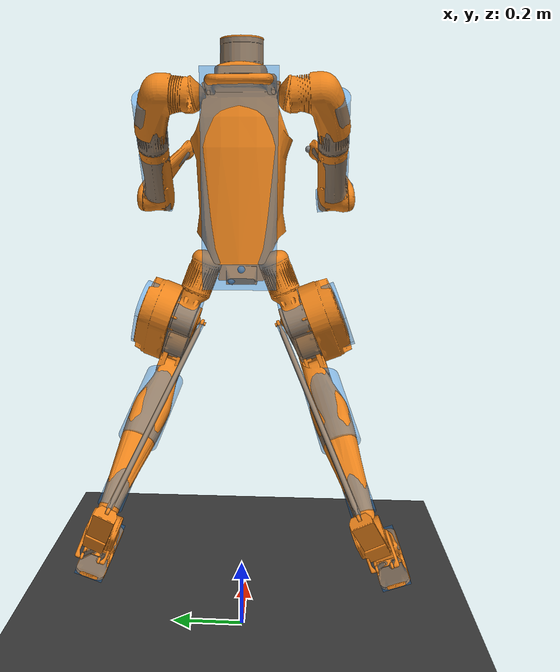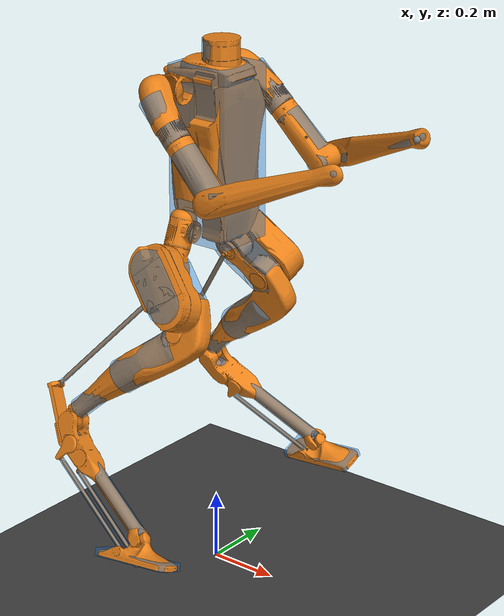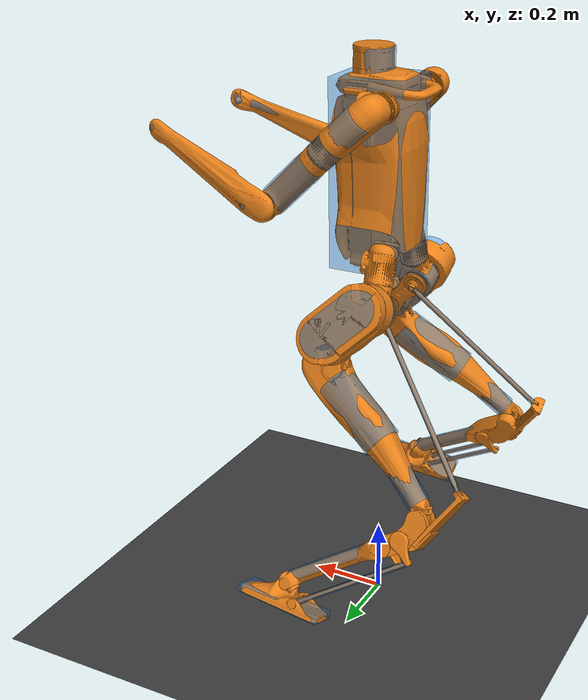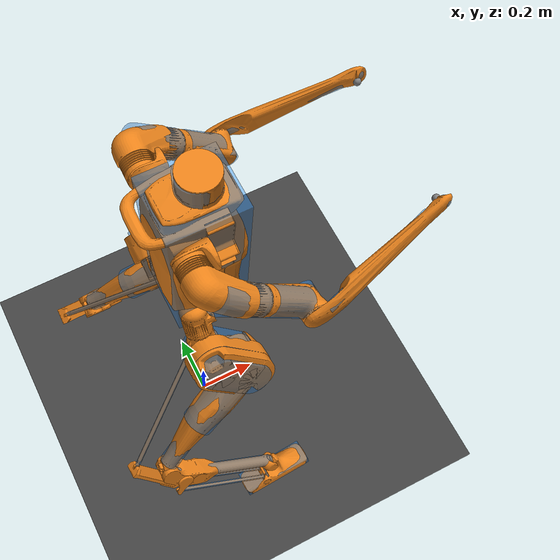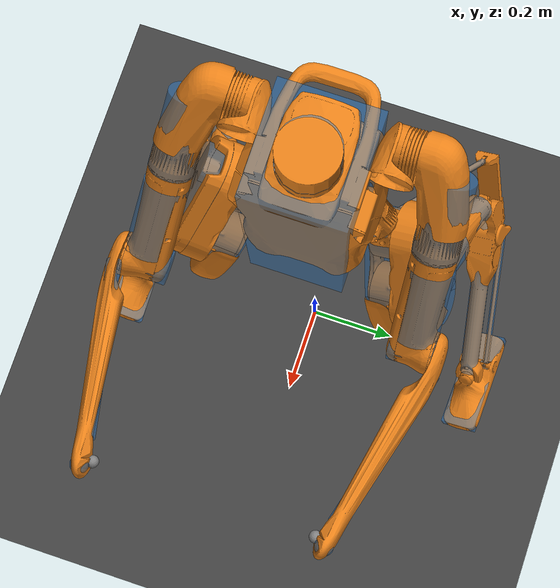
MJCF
<mujoco model='digit-v3'>
  <compiler angle='degree' eulerseq='xyz'/>
  <option gravity='0 0 -9.806' iterations='50' solver='Newton' timestep='0.000500'/>
  <asset>
    <material name='collision' rgba='0.1 0.5 0.9 0.4'/>
    <material name='plane' reflectance='0.000000' texrepeat='1 1' texture='plane' texuniform='true'/>
    <material name='robot' rgba='0.9 0.5 0.1 1'/>
    <texture builtin='checker' height='512' name='plane' rgb1='0.2 0.2 0.2' rgb2='0.3 0.3 0.3' type='2d' width='512'/>
    <texture builtin='gradient' height='128' rgb1='0.4 0.6 0.8' rgb2='0 0 0' type='skybox' width='128'/>
    <mesh name='base' file='torso.obj'/>
    <mesh name='left-hip-roll' file='hip-yaw-housing.obj'/>
    <mesh name='left-hip-yaw' file='hip-pitch-housing.obj'/>
    <mesh name='left-hip-pitch' file='hip-pitch.obj'/>
    <mesh name='left-knee' file='knee.obj'/>
    <mesh name='left-shin' file='shin.obj'/>
    <mesh name='left-tarsus' file='tarsus.obj'/>
    <mesh name='left-toe-A' file='toe-output.obj'/>
    <mesh name='left-toe-A-rod' file='toe-A-rod.obj'/>
    <mesh name='left-toe-B' file='toe-output.obj'/>
    <mesh name='left-toe-B-rod' file='toe-B-rod.obj'/>
    <mesh name='left-toe-pitch' file='toe-pitch.obj'/>
    <mesh name='left-toe-roll' file='toe-roll.obj'/>
    <mesh name='left-heel-spring' file='heel-spring.obj'/>
    <mesh name='left-achillies-rod' file='achilles-rod.obj'/>
    <mesh name='right-hip-roll' scale='1 -1 1' file='hip-yaw-housing.obj'/>
    <mesh name='right-hip-yaw' scale='1 -1 1' file='hip-pitch-housing.obj'/>
    <mesh name='right-hip-pitch' scale='1 -1 1' file='hip-pitch.obj'/>
    <mesh name='right-knee' scale='1 -1 1' file='knee.obj'/>
    <mesh name='right-shin' scale='1 -1 1' file='shin.obj'/>
    <mesh name='right-tarsus' scale='1 -1 1' file='tarsus.obj'/>
    <mesh name='right-toe-A' scale='1 -1 1' file='toe-output.obj'/>
    <mesh name='right-toe-A-rod' scale='1 -1 1' file='toe-A-rod.obj'/>
    <mesh name='right-toe-B' scale='1 -1 1' file='toe-output.obj'/>
    <mesh name='right-toe-B-rod' scale='1 -1 1' file='toe-B-rod.obj'/>
    <mesh name='right-toe-pitch' scale='1 -1 1' file='toe-pitch.obj'/>
    <mesh name='right-toe-roll' scale='1 -1 1' file='toe-roll.obj'/>
    <mesh name='right-heel-spring' scale='1 -1 1' file='heel-spring.obj'/>
    <mesh name='right-achillies-rod' scale='1 -1 1' file='achilles-rod.obj'/>
    <mesh name='left-shoulder-roll' file='arm-L1.obj'/>
    <mesh name='left-shoulder-pitch' file='arm-L2.obj'/>
    <mesh name='left-shoulder-yaw' file='arm-L3.obj'/>
    <mesh name='left-elbow' file='arm-L4.obj'/>
    <mesh name='right-shoulder-roll' scale='1 -1 1' file='arm-L1.obj'/>
    <mesh name='right-shoulder-pitch' scale='1 -1 1' file='arm-L2.obj'/>
    <mesh name='right-shoulder-yaw' scale='1 -1 1' file='arm-L3.obj'/>
    <mesh name='right-elbow' scale='1 -1 1' file='arm-L4.obj'/>
  </asset>
  <default>
    <default class='collision'>
      <geom conaffinity='1' condim='3' contype='1' material='collision'/>
    </default>
    <default class='robot'>
      <geom material='robot'/>
    </default>
    <equality solref='0.005 1'/>
    <geom conaffinity='0' condim='1' contype='0' solref='0.005 1'/>
    <motor ctrllimited='true'/>
  </default>
  <worldbody>
    <geom name='floor' type='plane' conaffinity='15' condim='3' material='plane' pos='0 0 0' size='5 5 0.125'/>
    <body name='base' pos='0 0 1.03' euler='0 0 0'>
      <inertial pos='0.001637 0.0002 0.259547' mass='15.028392' fullinertia='0.376284 0.342655 0.100648 -8.8e-05 0.008378 6.7e-05'/>
      <joint type='free' limited='false'/>
      <geom type='mesh' mesh='base' material='robot'/>
      <geom type='box' size='0.0975 0.087 0.245' pos='0.008 0 0.21' euler='0 0 0' class='collision'/>
      <geom type='cylinder' size ='0.05 0.0325' pos='0.02 0 0.49' euler='0 0 0' class='collision'/>
      <site name='context' pos='0.06425 0 0.38' euler='180 0 0' size='0.01'/>
      <site name='imu' pos='0 0 0' euler='0 -90 0' size='0.01'/>
      <body name='left-hip-roll' pos='-0.001 0.091 0' euler='0 -90 -21.5'>
        <inertial pos='-0.001967 0.000244 0.031435' mass='0.915088' fullinertia='0.001017 0.001148 0.000766 -3e-06 1.3e-05 -4e-06'/>
        <joint name='left-hip-roll' type='hinge' axis='0 0 1' range='-60 60' limited='true' damping='1.000000' frictionloss='1.000000' armature='0.1728'/>
        <geom type='mesh' mesh='left-hip-roll' material='robot'/>
        <body name='left-hip-yaw' pos='-0.0505 0 0.044' euler='0 -90 0'>
          <inertial pos='1e-05 -0.001945 0.042033' mass='0.818753' fullinertia='0.001627 0.001929 0.00077 -1e-06 2e-06 5.3e-05'/>
          <joint name='left-hip-yaw' type='hinge' axis='0 0 1' range='-40 40' limited='true' damping='1.000000' frictionloss='1.000000' armature='0.0675'/>
          <geom type='mesh' mesh='left-hip-yaw' material='robot'/>
          <body name='left-hip-pitch' pos='0 0.004 0.068' euler='90 0 135'>
            <inertial pos='0.060537 0.000521 -0.038857' mass='6.244279' fullinertia='0.011533 0.033345 0.033958 -0.000171 0.000148 0.000178'/>
            <joint name='left-hip-pitch' type='hinge' axis='0 0 -1' range='-60 90' limited='true' damping='1.000000' frictionloss='0.500000' armature='0.120576'/>
            <geom type='mesh' mesh='left-hip-pitch' material='robot'/>
            <geom type='cylinder' size ='0.05 0.072' pos='0 0 -0.04' euler='0 0 0' class='collision'/>
            <geom type='cylinder' size ='0.05 0.072' pos='0.12 0 -0.04' euler='0 0 0' class='collision'/>
            <geom type='box' size='0.06 0.05 0.072' pos='0.06 0 -0.04' euler='0 0 0' class='collision'/>
            <body name='left-achillies-rod' pos='0 0 0.046' euler='4.09 0.05 -82.27'>
              <inertial pos='0.2506 0 0' mass='0.178148' fullinertia='3e-06 0.004501 0.004501 0 0 0'/>
              <joint name='left-achillies-rod' type='ball' limited='false' damping='0.010000'/>
              <geom type='mesh' mesh='left-achillies-rod' material='robot'/>
              <geom type='capsule' size ='0.007 0.25' pos='0.25 0 0' euler='4 90 0' class='collision'/>
            </body>
            <body name='left-knee' pos='0.12 0 0.0045' euler='0 0 -90'>
              <inertial pos='0.045641 0.042154 0.001657' mass='1.227077' fullinertia='0.002643 0.005098 0.007019 -0.001832 6.6e-05 4.5e-05'/>
              <joint name='left-knee' type='hinge' axis='0 0 1' range='-71 50' limited='true' damping='1.000000' frictionloss='0.500000' armature='0.120576'/>
              <geom type='mesh' mesh='left-knee' material='robot'/>
              <body name='left-shin' pos='0.060677 0.047406 0' euler='0 0 0'>
                <inertial pos='0.174265 0.010265 0.00107' mass='0.895793' fullinertia='0.001128 0.022492 0.022793 0.001098 0.000196 -3e-06'/>
                <joint name='left-shin' type='hinge' axis='0 0 1' limited='false' stiffness='6000'/>
                <geom type='mesh' mesh='left-shin' material='robot'/>
                <geom type='cylinder' size ='0.03 0.1715' pos='0.23 0 0' euler='0 90 0' class='collision'/>
                <geom type='cylinder' size ='0.05 0.1' pos='0.125 0.009 0' euler='90 84 0' class='collision'/>
                <body name='left-tarsus' pos='0.434759 0.02 0' euler='0 0 103'>
                  <inertial pos='0.100777 -0.029183 0.000678' mass='1.322865' fullinertia='0.000932 0.016409 0.016501 0.00061 0.000102 9e-06'/>
                  <joint name='left-tarsus' type='hinge' axis='0 0 1' range='-50.3 71.6' limited='true'/>
                  <geom type='mesh' mesh='left-tarsus' material='robot'/>
                  <geom type='capsule' size ='0.02 0.18' pos='0.21 -0.03 0' euler='0 90 0' class='collision'/>
                  <body name='left-heel-spring' pos='-0.01766 -0.029456 0.00104' euler='4.47 0.32 155.8'>
                    <inertial pos='0.049086 0.004739 -4.5e-05' mass='0.230018' fullinertia='5.5e-05 0.00074 0.000701 1.5e-05 1e-06 -0'/>
                    <joint name='left-heel-spring' type='hinge' axis='0 0 1' range='-6 6' limited='true' stiffness='4375'/>
                    <geom type='mesh' mesh='left-heel-spring' material='robot'/>
                  </body>
                  <body name='left-toe-A' pos='0.059 -0.034 -0.0276' euler='-180 0 91.96'>
                    <inertial pos='0.005161 1e-06 -0.002248' mass='0.139557' fullinertia='2.9e-05 5.8e-05 7.4e-05 0 -4e-06 -0'/>
                    <joint name='left-toe-A' type='hinge' axis='0 0 1' range='-55.4 51.3' limited='true' damping='1.000000' frictionloss='1.000000' armature='0.035'/>
                    <geom type='mesh' mesh='left-toe-A' material='robot'/>
                    <body name='left-toe-A-rod' pos='0.057 0 -0.008' euler='0.34 2.14 -91.47'>
                      <inertial pos='0.171071 0 0' mass='0.090983' fullinertia='1e-06 0.001182 0.001182 -0 -0 0'/>
                      <joint name='left-toe-A-rod' type='ball' limited='false' damping='0.010000'/>
                      <geom type='mesh' mesh='left-toe-A-rod' material='robot'/>
                      <geom type='capsule' size ='0.007 0.17' pos='0.17 0 0' euler='4 90 0' class='collision'/>
                    </body>
                  </body>
                  <body name='left-toe-B' pos='0.111 -0.034 0.0276' euler='0 0 -91.96'>
                    <inertial pos='0.005161 1e-06 -0.002248' mass='0.139557' fullinertia='2.9e-05 5.8e-05 7.4e-05 0 -4e-06 -0'/>
                    <joint name='left-toe-B' type='hinge' axis='0 0 1' range='-52.3 72.45' limited='true' damping='1.000000' frictionloss='1.000000' armature='0.035'/>
                    <geom type='mesh' mesh='left-toe-B' material='robot'/>
                    <body name='left-toe-B-rod' pos='0.057 0 -0.008' euler='-0.22 -3.08 91.38'>
                      <inertial pos='0.142991 0 0' mass='0.079507' fullinertia='1e-06 0.000768 0.000768 -0 -0 0'/>
                      <joint name='left-toe-B-rod' type='ball' limited='false' damping='0.010000'/>
                      <geom type='mesh' mesh='left-toe-B-rod' material='robot'/>
                      <geom type='capsule' size ='0.007 0.144' pos='0.144 0 0' euler='4 90 0' class='collision'/>
                    </body>
                  </body>
                  <body name='left-toe-pitch' pos='0.408 -0.04 0' euler='0 0 68.5'>
                    <inertial pos='-0.000141 2e-06 3e-06' mass='0.043881' fullinertia='5e-06 8e-06 4e-06 -0 0 0'/>
                    <joint name='left-toe-pitch' type='hinge' axis='0 0 1' range='-45 45' limited='true'/>
                    <geom type='mesh' mesh='left-toe-pitch' material='robot'/>
                    <body name='left-toe-roll' pos='0 0 0' euler='0 90 0'>
                      <inertial pos='9e-06 -0.028084 -0.023204' mass='0.531283' fullinertia='0.00187 0.001616 0.000843 -0 0 0.000566'/>
                      <joint name='left-toe-roll' type='hinge' axis='0 0 1' range='-35 35' limited='true'/>
                      <geom type='mesh' mesh='left-toe-roll' material='robot'/>
                      <geom type='box' size='0.04 0.1175 0.0115' pos='0 -0.0437 -0.0255' euler='-60 0 0' class='collision'/>
                      <site name='left-foot' pos='0 -0.05456 -0.0315' euler='-60 0 -90' size='0.01'/>
                    </body>
                  </body>
                </body>
              </body>
            </body>
          </body>
        </body>
      </body>
      <body name='left-shoulder-roll' pos='-0.001 0.12 0.4' euler='-10 -90 0'>
        <inertial pos='-0.000819 -0.003158 0.023405' mass='0.535396' fullinertia='0.000704 0.00075 0.000298 1.4e-05 1.2e-05 3.5e-05'/>
        <joint name='left-shoulder-roll' type='hinge' axis='0 0 1' range='-75 75' limited='true' damping='2.000000' frictionloss='2.000000' armature='0.1728'/>
        <geom type='mesh' mesh='left-shoulder-roll' material='robot'/>
        <body name='left-shoulder-pitch' pos='-0.00317 -0.011055 0.0555' euler='90 -16 -45'>
          <inertial pos='-4.2e-05 -0.061882 -0.073788' mass='1.440357' fullinertia='0.006761 0.002087 0.005778 -6e-06 -3e-06 -0.002046'/>
          <joint name='left-shoulder-pitch' type='hinge' axis='0 0 -1' range='-145 145' limited='true' damping='2.000000' frictionloss='2.000000' armature='0.1728'/>
          <geom type='mesh' mesh='left-shoulder-pitch' material='robot'/>
          <geom type='cylinder' size ='0.038 0.07' pos='0 -0.093 -0.1' euler='90 0 0' class='collision'/>
          <body name='left-shoulder-yaw' pos='0 -0.165 -0.1' euler='90 0 0'>
            <inertial pos='-3e-05 0.001937 0.11407' mass='1.065387' fullinertia='0.006967 0.007003 0.000673 -1e-06 -1e-06 -1.5e-05'/>
            <joint name='left-shoulder-yaw' type='hinge' axis='0 0 1' range='-100 100' limited='true' damping='1.000000' frictionloss='2.000000' armature='0.0675'/>
            <geom type='mesh' mesh='left-shoulder-yaw' material='robot'/>
            <geom type='cylinder' size ='0.038 0.0675' pos='0 0 0.092558' euler='0 0 0' class='collision'/>
            <geom type='cylinder' size ='0.03 0.04' pos='0 -0.0035 0.185' euler='90 0 22.5' class='collision'/>
            <body name='left-elbow' pos='0 -0.0385 0.185' euler='90 0 22.5'>
              <inertial pos='0.107996 0.000521 -0.017765' mass='0.550582' fullinertia='0.000476 0.009564 0.009437 -2.9e-05 0.001403 9e-06'/>
              <joint name='left-elbow' type='hinge' axis='0 0 1' range='-77.5 77.5' limited='true' damping='1.000000' frictionloss='2.000000' armature='0.1728'/>
              <geom type='mesh' mesh='left-elbow' material='robot'/>
              <geom type='cylinder' size ='0.013 0.1565' pos='0.184 0.01 -0.026' euler='-190 78 -180' class='collision'/>
              <geom type='sphere' size='0.015' pos='0.37937 0 -0.061912' euler='0 0 0' class='collision'/>
              <site name='left-hand' pos='0.369 0 -0.07912' euler='90 0 -10' size='0.01'/>
            </body>
          </body>
        </body>
      </body>
      <site name='lidar' pos='0.025 0 0.4925' euler='0 0 15' size='0.01'/>
      <site name='realsense-back' pos='-0.000607 0.025 -0.025283' euler='-180 45 180' size='0.01'/>
      <site name='realsense-down' pos='0.0305 0.025 -0.03268' euler='0 90 0' size='0.01'/>
      <site name='realsense-forward' pos='0.093981 0.0225 0.426449' euler='0 45 0' size='0.01'/>
      <site name='realsense-front' pos='0.061607 0.025 -0.025283' euler='0 45 0' size='0.01'/>
      <body name='right-hip-roll' pos='-0.001 -0.091 0' euler='0 -90 21.5'>
        <inertial pos='-0.001967 -0.000244 0.031435' mass='0.915088' fullinertia='0.001017 0.001148 0.000766 3e-06 1.3e-05 4e-06'/>
        <joint name='right-hip-roll' type='hinge' axis='0 0 1' range='-60 60' limited='true' damping='1.000000' frictionloss='1.000000' armature='0.1728'/>
        <geom type='mesh' mesh='right-hip-roll' material='robot'/>
        <body name='right-hip-yaw' pos='-0.0505 0 0.044' euler='0 -90 0'>
          <inertial pos='1e-05 0.001945 0.042033' mass='0.818753' fullinertia='0.001627 0.001929 0.00077 1e-06 2e-06 -5.3e-05'/>
          <joint name='right-hip-yaw' type='hinge' axis='0 0 1' range='-40 40' limited='true' damping='1.000000' frictionloss='1.000000' armature='0.0675'/>
          <geom type='mesh' mesh='right-hip-yaw' material='robot'/>
          <body name='right-hip-pitch' pos='0 -0.004 0.068' euler='-90 0 -135'>
            <inertial pos='0.060537 -0.000521 -0.038857' mass='6.244279' fullinertia='0.011533 0.033345 0.033958 0.000171 0.000148 -0.000178'/>
            <joint name='right-hip-pitch' type='hinge' axis='0 0 -1' range='-90 60' limited='true' damping='1.000000' frictionloss='0.500000' armature='0.120576'/>
            <geom type='mesh' mesh='right-hip-pitch' material='robot'/>
            <geom type='cylinder' size ='0.05 0.072' pos='0 0 -0.04' euler='0 0 0' class='collision'/>
            <geom type='cylinder' size ='0.05 0.072' pos='0.12 0 -0.04' euler='0 0 0' class='collision'/>
            <geom type='box' size='0.06 0.05 0.072' pos='0.06 0 -0.04' euler='0 0 0' class='collision'/>
            <body name='right-achillies-rod' pos='0 0 0.046' euler='-4.09 0.05 82.27'>
              <inertial pos='0.2506 0 0' mass='0.178148' fullinertia='3e-06 0.004501 0.004501 0 0 0'/>
              <joint name='right-achillies-rod' type='ball' limited='false' damping='0.010000'/>
              <geom type='mesh' mesh='right-achillies-rod' material='robot'/>
              <geom type='capsule' size ='0.007 0.25' pos='0.25 0 0' euler='4 90 0' class='collision'/>
            </body>
            <body name='right-knee' pos='0.12 0 0.0045' euler='0 0 90'>
              <inertial pos='0.045641 -0.042154 0.001657' mass='1.227077' fullinertia='0.002643 0.005098 0.007019 0.001832 6.6e-05 -4.5e-05'/>
              <joint name='right-knee' type='hinge' axis='0 0 1' range='-50 71' limited='true' damping='1.000000' frictionloss='0.500000' armature='0.120576'/>
              <geom type='mesh' mesh='right-knee' material='robot'/>
              <body name='right-shin' pos='0.060677 -0.047406 0' euler='0 0 0'>
                <inertial pos='0.174265 -0.010265 0.00107' mass='0.895793' fullinertia='0.001128 0.022492 0.022793 -0.001098 0.000196 3e-06'/>
                <joint name='right-shin' type='hinge' axis='0 0 1' limited='false' stiffness='6000'/>
                <geom type='mesh' mesh='right-shin' material='robot'/>
                <geom type='cylinder' size ='0.03 0.1715' pos='0.23 0 0' euler='0 90 0' class='collision'/>
                <geom type='cylinder' size ='0.05 0.1' pos='0.125 -0.009 0' euler='-90 84 0' class='collision'/>
                <body name='right-tarsus' pos='0.434759 -0.02 0' euler='0 0 -103'>
                  <inertial pos='0.100777 0.029183 0.000678' mass='1.322865' fullinertia='0.000932 0.016409 0.016501 -0.00061 0.000102 -9e-06'/>
                  <joint name='right-tarsus' type='hinge' axis='0 0 1' range='-71.6 50.3' limited='true'/>
                  <geom type='mesh' mesh='right-tarsus' material='robot'/>
                  <geom type='capsule' size ='0.02 0.18' pos='0.21 0.03 0' euler='0 90 0' class='collision'/>
                  <body name='right-heel-spring' pos='-0.01766 0.029456 0.00104' euler='-4.47 0.32 -155.8'>
                    <inertial pos='0.049086 -0.004739 -4.5e-05' mass='0.230018' fullinertia='5.5e-05 0.00074 0.000701 -1.5e-05 1e-06 0'/>
                    <joint name='right-heel-spring' type='hinge' axis='0 0 1' range='-6 6' limited='true' stiffness='4375'/>
                    <geom type='mesh' mesh='right-heel-spring' material='robot'/>
                  </body>
                  <body name='right-toe-A' pos='0.059 0.034 -0.0276' euler='180 0 -91.96'>
                    <inertial pos='0.005161 -1e-06 -0.002248' mass='0.139557' fullinertia='2.9e-05 5.8e-05 7.4e-05 -0 -4e-06 0'/>
                    <joint name='right-toe-A' type='hinge' axis='0 0 1' range='-55.4 51.3' limited='true' damping='1.000000' frictionloss='1.000000' armature='0.035'/>
                    <geom type='mesh' mesh='right-toe-A' material='robot'/>
                    <body name='right-toe-A-rod' pos='0.057 0 -0.008' euler='-0.34 2.14 91.47'>
                      <inertial pos='0.171071 0 0' mass='0.090983' fullinertia='1e-06 0.001182 0.001182 0 -0 0'/>
                      <joint name='right-toe-A-rod' type='ball' limited='false' damping='0.010000'/>
                      <geom type='mesh' mesh='right-toe-A-rod' material='robot'/>
                      <geom type='capsule' size ='0.007 0.17' pos='0.17 0 0' euler='4 90 0' contype='2' conaffinity='1' class='collision'/>
                    </body>
                  </body>
                  <body name='right-toe-B' pos='0.111 0.034 0.0276' euler='0 0 91.96'>
                    <inertial pos='0.005161 -1e-06 -0.002248' mass='0.139557' fullinertia='2.9e-05 5.8e-05 7.4e-05 -0 -4e-06 0'/>
                    <joint name='right-toe-B' type='hinge' axis='0 0 1' range='-52.3 72.45' limited='true' damping='1.000000' frictionloss='1.000000' armature='0.035'/>
                    <geom type='mesh' mesh='right-toe-B' material='robot'/>
                    <body name='right-toe-B-rod' pos='0.057 0 -0.008' euler='0.22 -3.08 -91.38'>
                      <inertial pos='0.142991 0 0' mass='0.079507' fullinertia='1e-06 0.000768 0.000768 0 -0 0'/>
                      <joint name='right-toe-B-rod' type='ball' limited='false' damping='0.010000'/>
                      <geom type='mesh' mesh='right-toe-B-rod' material='robot'/>
                      <geom type='capsule' size ='0.007 0.144' pos='0.144 0 0' euler='4 90 0' contype='2' conaffinity='1' class='collision'/>
                    </body>
                  </body>
                  <body name='right-toe-pitch' pos='0.408 0.04 0' euler='0 0 -68.5'>
                    <inertial pos='-0.000141 -2e-06 3e-06' mass='0.043881' fullinertia='5e-06 8e-06 4e-06 0 0 -0'/>
                    <joint name='right-toe-pitch' type='hinge' axis='0 0 1' range='-45 45' limited='true'/>
                    <geom type='mesh' mesh='right-toe-pitch' material='robot'/>
                    <body name='right-toe-roll' pos='0 0 0' euler='0 90 0'>
                      <inertial pos='9e-06 0.028084 -0.023204' mass='0.531283' fullinertia='0.00187 0.001616 0.000843 0 0 -0.000566'/>
                      <joint name='right-toe-roll' type='hinge' axis='0 0 1' range='-35 35' limited='true'/>
                      <geom type='mesh' mesh='right-toe-roll' material='robot'/>
                      <geom type='box' size='0.04 0.1175 0.0115' pos='0 0.0437 -0.0255' euler='60 0 0' class='collision'/>
                      <site name='right-foot' pos='0 0.05456 -0.0315' euler='60 0 90' size='0.01'/>
                    </body>
                  </body>
                </body>
              </body>
            </body>
          </body>
        </body>
      </body>
      <body name='right-shoulder-roll' pos='-0.001 -0.12 0.4' euler='10 -90 0'>
        <inertial pos='-0.000819 0.003158 0.023405' mass='0.535396' fullinertia='0.000704 0.00075 0.000298 -1.4e-05 1.2e-05 -3.5e-05'/>
        <joint name='right-shoulder-roll' type='hinge' axis='0 0 1' range='-75 75' limited='true' damping='2.000000' frictionloss='2.000000' armature='0.1728'/>
        <geom type='mesh' mesh='right-shoulder-roll' material='robot'/>
        <body name='right-shoulder-pitch' pos='-0.00317 0.011055 0.0555' euler='-90 -16 45'>
          <inertial pos='-4.2e-05 0.061882 -0.073788' mass='1.440357' fullinertia='0.006761 0.002087 0.005778 6e-06 -3e-06 0.002046'/>
          <joint name='right-shoulder-pitch' type='hinge' axis='0 0 -1' range='-145 145' limited='true' damping='2.000000' frictionloss='2.000000' armature='0.1728'/>
          <geom type='mesh' mesh='right-shoulder-pitch' material='robot'/>
          <geom type='cylinder' size ='0.038 0.07' pos='0 0.093 -0.1' euler='-90 0 0' class='collision'/>
          <body name='right-shoulder-yaw' pos='0 0.165 -0.1' euler='-90 0 0'>
            <inertial pos='-3e-05 -0.001937 0.11407' mass='1.065387' fullinertia='0.006967 0.007003 0.000673 1e-06 -1e-06 1.5e-05'/>
            <joint name='right-shoulder-yaw' type='hinge' axis='0 0 1' range='-100 100' limited='true' damping='1.000000' frictionloss='2.000000' armature='0.0675'/>
            <geom type='mesh' mesh='right-shoulder-yaw' material='robot'/>
            <geom type='cylinder' size ='0.038 0.0675' pos='0 0 0.092558' euler='0 0 0' class='collision'/>
            <geom type='cylinder' size ='0.03 0.04' pos='0 -0.0035 0.185' euler='90 0 22.5' class='collision'/>
            <body name='right-elbow' pos='0 0.0385 0.185' euler='-90 0 -22.5'>
              <inertial pos='0.107996 -0.000521 -0.017765' mass='0.550582' fullinertia='0.000476 0.009564 0.009437 2.9e-05 0.001403 -9e-06'/>
              <joint name='right-elbow' type='hinge' axis='0 0 1' range='-77.5 77.5' limited='true' damping='1.000000' frictionloss='2.000000' armature='0.1728'/>
              <geom type='mesh' mesh='right-elbow' material='robot'/>
              <geom type='cylinder' size ='0.013 0.1565' pos='0.184 0.01 -0.026' euler='-190 78 -180' class='collision'/>
              <geom type='sphere' size='0.015' pos='0.37937 0 -0.061912' euler='0 0 0' class='collision'/>
              <site name='right-hand' pos='0.369 0 -0.07912' euler='-90 0 10' size='0.01'/>
            </body>
          </body>
        </body>
      </body>
    </body>
  </worldbody>
  <equality>
    <connect name='left-toe-A-rod' body1='left-toe-roll' body2='left-toe-A-rod' anchor='0.0179 -0.009551 -0.054164'/>
    <connect name='left-toe-B-rod' body1='left-toe-roll' body2='left-toe-B-rod' anchor='-0.0181 -0.009551 -0.054164'/>
    <connect name='left-achillies-rod' body1='left-heel-spring' body2='left-achillies-rod' anchor='0.113789 -0.011056 0'/>
    <connect name='right-toe-A-rod' body1='right-toe-roll' body2='right-toe-A-rod' anchor='0.0179 0.009551 -0.054164'/>
    <connect name='right-toe-B-rod' body1='right-toe-roll' body2='right-toe-B-rod' anchor='-0.0181 0.009551 -0.054164'/>
    <connect name='right-achillies-rod' body1='right-heel-spring' body2='right-achillies-rod' anchor='0.113789 0.011056 0'/>
  </equality>
  <actuator>
    <motor name='left-hip-roll' joint='left-hip-roll' gear='80' ctrllimited='true' ctrlrange='-1.4 1.4'/>
    <motor name='left-hip-yaw' joint='left-hip-yaw' gear='50' ctrllimited='true' ctrlrange='-1.4 1.4'/>
    <motor name='left-hip-pitch' joint='left-hip-pitch' gear='16' ctrllimited='true' ctrlrange='-12.5 12.5'/>
    <motor name='left-knee' joint='left-knee' gear='16' ctrllimited='true' ctrlrange='-12.5 12.5'/>
    <motor name='left-toe-A' joint='left-toe-A' gear='50' ctrllimited='true' ctrlrange='-0.9 0.9'/>
    <motor name='left-toe-B' joint='left-toe-B' gear='50' ctrllimited='true' ctrlrange='-0.9 0.9'/>
    <motor name='right-hip-roll' joint='right-hip-roll' gear='80' ctrllimited='true' ctrlrange='-1.4 1.4'/>
    <motor name='right-hip-yaw' joint='right-hip-yaw' gear='50' ctrllimited='true' ctrlrange='-1.4 1.4'/>
    <motor name='right-hip-pitch' joint='right-hip-pitch' gear='16' ctrllimited='true' ctrlrange='-12.5 12.5'/>
    <motor name='right-knee' joint='right-knee' gear='16' ctrllimited='true' ctrlrange='-12.5 12.5'/>
    <motor name='right-toe-A' joint='right-toe-A' gear='50' ctrllimited='true' ctrlrange='-0.9 0.9'/>
    <motor name='right-toe-B' joint='right-toe-B' gear='50' ctrllimited='true' ctrlrange='-0.9 0.9'/>
    <motor name='left-shoulder-roll' joint='left-shoulder-roll' gear='80' ctrllimited='true' ctrlrange='-1.4 1.4'/>
    <motor name='left-shoulder-pitch' joint='left-shoulder-pitch' gear='80' ctrllimited='true' ctrlrange='-1.4 1.4'/>
    <motor name='left-shoulder-yaw' joint='left-shoulder-yaw' gear='50' ctrllimited='true' ctrlrange='-1.4 1.4'/>
    <motor name='left-elbow' joint='left-elbow' gear='80' ctrllimited='true' ctrlrange='-1.4 1.4'/>
    <motor name='right-shoulder-roll' joint='right-shoulder-roll' gear='80' ctrllimited='true' ctrlrange='-1.4 1.4'/>
    <motor name='right-shoulder-pitch' joint='right-shoulder-pitch' gear='80' ctrllimited='true' ctrlrange='-1.4 1.4'/>
    <motor name='right-shoulder-yaw' joint='right-shoulder-yaw' gear='50' ctrllimited='true' ctrlrange='-1.4 1.4'/>
    <motor name='right-elbow' joint='right-elbow' gear='80' ctrllimited='true' ctrlrange='-1.4 1.4'/>
  </actuator>
  <sensor>
    <framepos  name='base-pos' objtype='body' objname='base' />
    <framequat name='base-quat' objtype='body' objname='base' />
    <jointpos name='left-hip-roll' joint='left-hip-roll'/>
    <jointpos name='left-hip-yaw' joint='left-hip-yaw'/>
    <jointpos name='left-hip-pitch' joint='left-hip-pitch'/>
    <jointpos name='left-knee' joint='left-knee'/>
    <jointpos name='left-toe-A' joint='left-toe-A'/>
    <jointpos name='left-toe-B' joint='left-toe-B'/>
    <jointpos name='right-hip-roll' joint='right-hip-roll'/>
    <jointpos name='right-hip-yaw' joint='right-hip-yaw'/>
    <jointpos name='right-hip-pitch' joint='right-hip-pitch'/>
    <jointpos name='right-knee' joint='right-knee'/>
    <jointpos name='right-toe-A' joint='right-toe-A'/>
    <jointpos name='right-toe-B' joint='right-toe-B'/>
    <jointpos name='left-shoulder-roll' joint='left-shoulder-roll'/>
    <jointpos name='left-shoulder-pitch' joint='left-shoulder-pitch'/>
    <jointpos name='left-shoulder-yaw' joint='left-shoulder-yaw'/>
    <jointpos name='left-elbow' joint='left-elbow'/>
    <jointpos name='right-shoulder-roll' joint='right-shoulder-roll'/>
    <jointpos name='right-shoulder-pitch' joint='right-shoulder-pitch'/>
    <jointpos name='right-shoulder-yaw' joint='right-shoulder-yaw'/>
    <jointpos name='right-elbow' joint='right-elbow'/>
    <frameangvel name='base-angvel' objtype='body' objname='base' />
    <framelinvel name='base-linvel' objtype='body' objname='base' />
    <jointvel name='left-hip-roll-vel' joint='left-hip-roll'/>
    <jointvel name='left-hip-yaw-vel' joint='left-hip-yaw'/>
    <jointvel name='left-hip-pitch-vel' joint='left-hip-pitch'/>
    <jointvel name='left-knee-vel' joint='left-knee'/>
    <jointvel name='left-shin-vel' joint='left-shin'/>
    <jointvel name='left-tarsus-vel' joint='left-tarsus'/>
    <jointvel name='left-toe-A-vel' joint='left-toe-A'/>
    <jointvel name='left-toe-B-vel' joint='left-toe-B'/>
    <jointvel name='right-hip-roll-vel' joint='right-hip-roll'/>
    <jointvel name='right-hip-yaw-vel' joint='right-hip-yaw'/>
    <jointvel name='right-hip-pitch-vel' joint='right-hip-pitch'/>
    <jointvel name='right-knee-vel' joint='right-knee'/>
    <jointvel name='right-shin-vel' joint='right-shin'/>
    <jointvel name='right-tarsus-vel' joint='right-tarsus'/>
    <jointvel name='right-toe-A-vel' joint='right-toe-A'/>
    <jointvel name='right-toe-B-vel' joint='right-toe-B'/>
    <jointvel name='left-shoulder-roll-vel' joint='left-shoulder-roll'/>
    <jointvel name='left-shoulder-pitch-vel' joint='left-shoulder-pitch'/>
    <jointvel name='left-shoulder-yaw-vel' joint='left-shoulder-yaw'/>
    <jointvel name='left-elbow-vel' joint='left-elbow'/>
    <jointvel name='right-shoulder-roll-vel' joint='right-shoulder-roll'/>
    <jointvel name='right-shoulder-pitch-vel' joint='right-shoulder-pitch'/>
    <jointvel name='right-shoulder-yaw-vel' joint='right-shoulder-yaw'/>
    <jointvel name='right-elbow-vel' joint='right-elbow'/>
  </sensor>
</mujoco>
